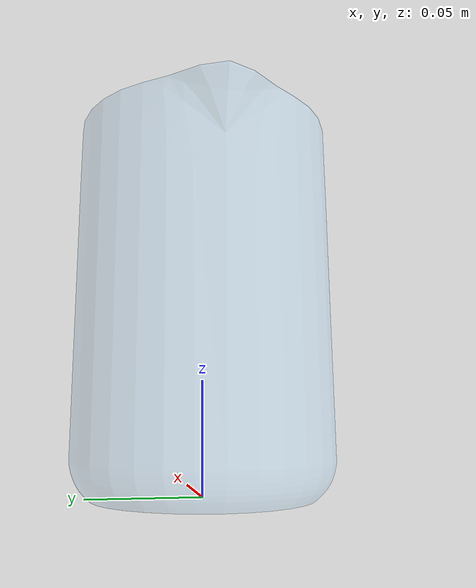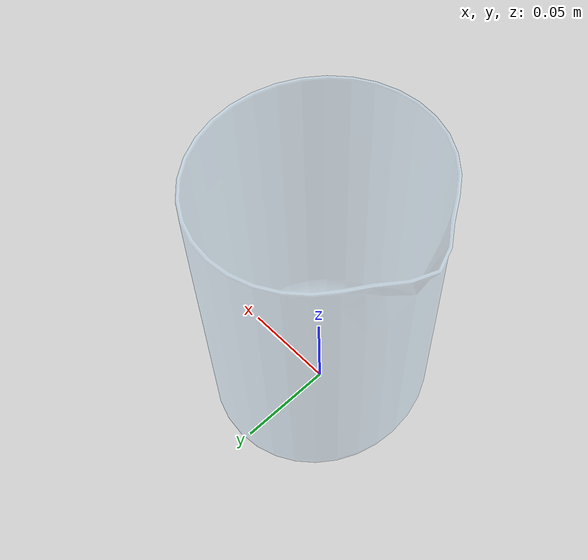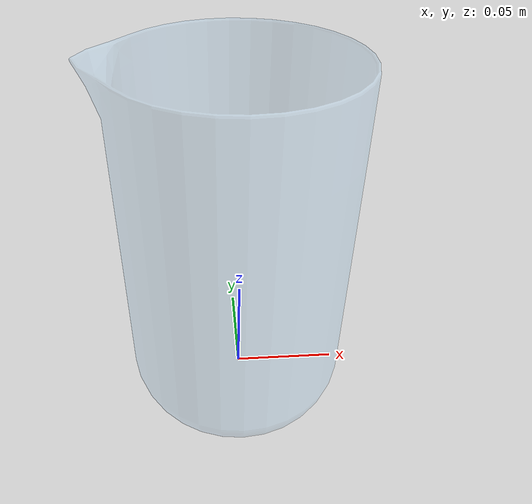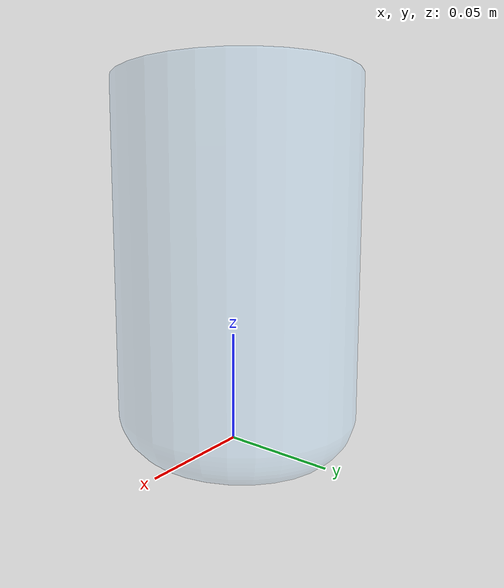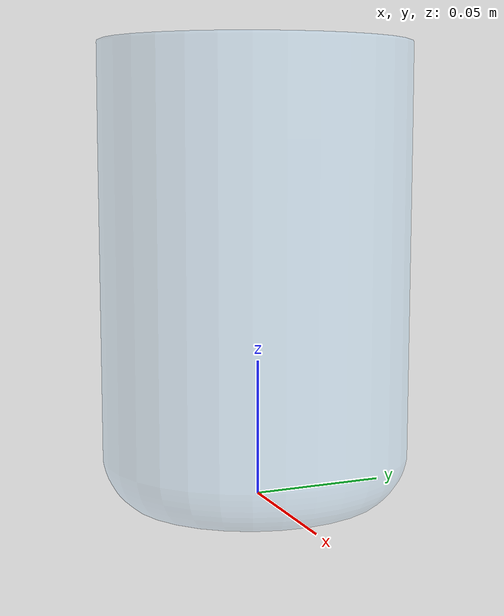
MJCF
<mujoco model="Beaker">

  <compiler angle="radian" meshdir="../../assets" />

  <option gravity="0 0 -9.81" />

  <asset>

    <mesh name="beaker_mesh" file="Beaker/base.obj" scale="3.120000 3.120000 3.360000" />
  </asset>

  <worldbody>

    <body name="beaker" quat="0.7071 0.7071 0 0" pos="0.348000 0.000000 -0.000000">

      <geom name="beaker_visual" type="mesh" mesh="beaker_mesh" rgba="0.65 0.85 1.0 0.3" contype="0" conaffinity="0" />

      <geom name="glass_sheet_collision_2" type="cylinder" size="0.051360 0.004800" pos="-0.351600 0.005880 -0.000000" euler="1.5708 0 0" contype="1" conaffinity="1" friction="0.6 0.2 0.001" density="2500" rgba="0 0 0 0" />
      <geom name="ring_1" type="box" size="0.024000 0.084000 0.002400" pos="-0.349200 0.086400 -0.052800" density="2500" contype="1" conaffinity="1" rgba="0 0 0 0" />
      <geom name="ring_2" type="box" size="0.024000 0.084000 0.002400" pos="-0.349200 0.086400 0.052800" density="2500" contype="1" conaffinity="1" rgba="0 0 0 0" />
      <geom name="ring_3" type="box" size="0.024000 0.084000 0.002400" pos="-0.300000 0.086400 -0.000000" density="2500" contype="1" conaffinity="1" euler="0 1.5708 0" rgba="0 0 0 0" />
      <geom name="ring_4" type="box" size="0.024000 0.084000 0.002400" density="2500" pos="-0.408000 0.086400 -0.000000" contype="1" conaffinity="1" euler="0 1.5708 0" rgba="0 0 0 0" />
      <geom name="ring_5" type="box" size="0.024000 0.084000 0.002400" pos="-0.392160 0.086400 -0.036720" density="2500" contype="1" conaffinity="1" euler="0 0.7854 0" rgba="0 0 0 0" />
      <geom name="ring_6" type="box" size="0.024000 0.084000 0.002400" pos="-0.314400 0.086400 0.036720" density="2500" contype="1" conaffinity="1" euler="0 0.7854 0" rgba="0 0 0 0" />
      <geom name="ring_7" type="box" size="0.024000 0.084000 0.002400" pos="-0.392160 0.086400 0.036720" density="2500" contype="1" conaffinity="1" euler="0 -0.7854 0" rgba="0 0 0 0" />
      <geom name="ring_8" type="box" size="0.024000 0.084000 0.002400" pos="-0.314400 0.086400 -0.036720" density="2500" contype="1" conaffinity="1" euler="0 -0.7854 0" rgba="0 0 0 0" />
    </body>
  </worldbody>
</mujoco>
